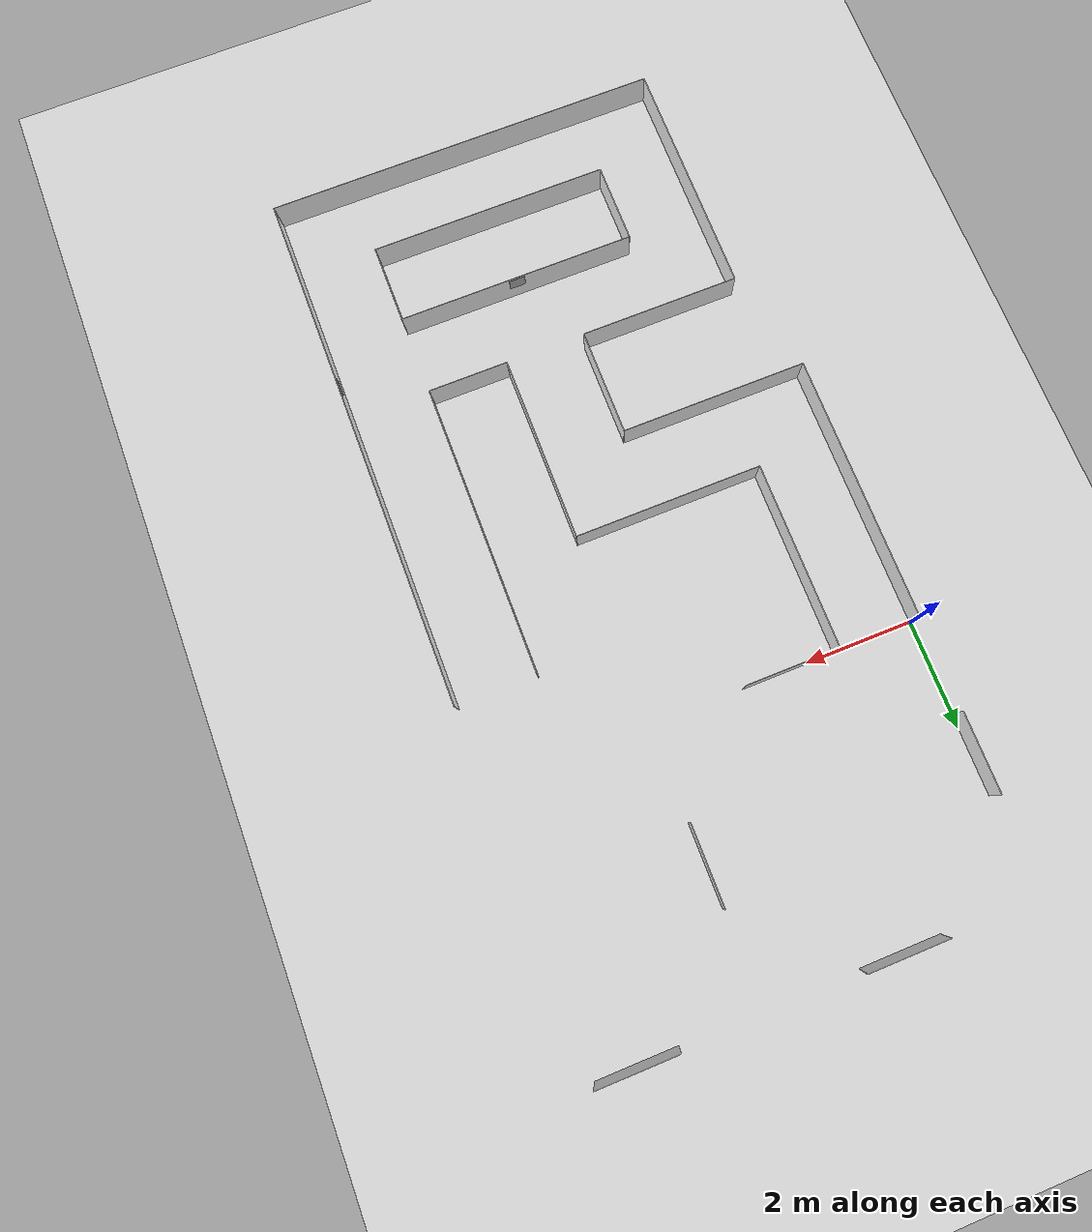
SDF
<sdf version="1.6">
 <world name="circuito_cuadrado">
  <include><uri>model://sun</uri></include>
  <include><uri>model://ground_plane</uri></include>
  <model name="wall_left">
   <static>true</static>
   <link name="link">
    <visual name="visual">
     <geometry><box><size>1.5 0.01 0.7</size></box></geometry>
     <material><ambient>1 1 1 1</ambient></material>
    </visual>
    <collision name="collision"><geometry><box><size>1.5 0.01 0.7</size></box></geometry></collision>
   </link>
   <pose>0 2.5 0.35 0 0 1.5708</pose>
  </model>
  <model name="wall_right">
   <static>true</static>
   <link name="link">
    <visual name="visual">
     <geometry><box><size>1.5 0.01 0.7</size></box></geometry>
     <material><ambient>1 1 1 1</ambient></material>
    </visual>
    <collision name="collision"><geometry><box><size>1.5 0.01 0.7</size></box></geometry></collision>
   </link>
   <pose>5 2.5 0.35 0 0 1.5708</pose>
  </model>
  <model name="wall_top">
   <static>true</static>
   <link name="link">
    <visual name="visual">
     <geometry><box><size>1.5 0.01 0.7</size></box></geometry>
     <material><ambient>1 1 1 1</ambient></material>
    </visual>
    <collision name="collision"><geometry><box><size>1.5 0.01 0.7</size></box></geometry></collision>
   </link>
   <pose>2.5 5 0.35 0 0 0</pose>
  </model>
  <model name="wall_bottom">
   <static>true</static>
   <link name="link">
    <visual name="visual">
     <geometry><box><size>1.5 0.01 0.7</size></box></geometry>
     <material><ambient>1 1 1 1</ambient></material>
    </visual>
    <collision name="collision"><geometry><box><size>1.5 0.01 0.7</size></box></geometry></collision>
   </link>
   <pose>2.5 0 0.35 0 0 0</pose>
  </model>
  <model name="wall_passillo_ini_i">
   <static>true</static>
   <link name="link">
    <visual name="visual">
     <geometry><box><size>3.5 0.01 0.7</size></box></geometry>
     <material><ambient>1 1 1 1</ambient></material>
    </visual>
    <collision name="collision"><geometry><box><size>3.5 0.01 0.7</size></box></geometry></collision>
   </link>
   <pose>1.5 -1.75 0.35 0 0 1.5708</pose>
  </model>
  <model name="wall_passillo_ini_d">
   <static>true</static>
   <link name="link">
    <visual name="visual">
     <geometry><box><size>5 0.01 0.7</size></box></geometry>
     <material><ambient>1 1 1 1</ambient></material>
    </visual>
    <collision name="collision"><geometry><box><size>5 0.01 0.7</size></box></geometry></collision>
   </link>
   <pose>0 -2.5 0.35 0 0 1.5708</pose>
  </model>
  <model name="wall_pasillo_2_i">
   <static>true</static>
   <link name="link">
    <visual name="visual">
     <geometry><box><size>3.5 0.01 0.7</size></box></geometry>
     <material><ambient>1 1 1 1</ambient></material>
    </visual>
    <collision name="collision"><geometry><box><size>3.5 0.01 0.7</size></box></geometry></collision>
   </link>
   <pose>3.25 -3.5 0.35 0 0 0</pose>
  </model>
  <model name="wall_pasillo_2_d">
   <static>true</static>
   <link name="link">
    <visual name="visual">
     <geometry><box><size>3.5 0.01 0.7</size></box></geometry>
     <material><ambient>1 1 1 1</ambient></material>
    </visual>
    <collision name="collision"><geometry><box><size>3.5 0.01 0.7</size></box></geometry></collision>
   </link>
   <pose>1.75 -5 0.35 0 0 0</pose>
  </model>
  <model name="wall_passillo_3_i">
   <static>true</static>
   <link name="link">
    <visual name="visual">
     <geometry><box><size>3.5 0.01 0.7</size></box></geometry>
     <material><ambient>1 1 1 1</ambient></material>
    </visual>
    <collision name="collision"><geometry><box><size>3.5 0.01 0.7</size></box></geometry></collision>
   </link>
   <pose>5 -5.25 0.35 0 0 1.5708</pose>
  </model>
  <model name="wall_passillo_3_d">
   <static>true</static>
   <link name="link">
    <visual name="visual">
     <geometry><box><size>2 0.01 0.7</size></box></geometry>
     <material><ambient>1 1 1 1</ambient></material>
    </visual>
    <collision name="collision"><geometry><box><size>2 0.01 0.7</size></box></geometry></collision>
   </link>
   <pose>3.5 -6 0.35 0 0 1.5708</pose>
  </model>
  <model name="wall_island_i">
   <static>true</static>
   <link name="link">
    <visual name="visual">
     <geometry><box><size>1.5 0.01 0.7</size></box></geometry>
     <material><ambient>1 1 1 1</ambient></material>
    </visual>
    <collision name="collision"><geometry><box><size>1.5 0.01 0.7</size></box></geometry></collision>
   </link>
   <pose>2 -9.25 0.35 0 0 1.5708</pose>
  </model>
  <model name="wall_island_d">
   <static>true</static>
   <link name="link">
    <visual name="visual">
     <geometry><box><size>1.5 0.01 0.7</size></box></geometry>
     <material><ambient>1 1 1 1</ambient></material>
    </visual>
    <collision name="collision"><geometry><box><size>1.5 0.01 0.7</size></box></geometry></collision>
   </link>
   <pose>6.5 -9.25 0.35 0 0 1.5708</pose>
  </model>
  <model name="wall_island_sup">
   <static>true</static>
   <link name="link">
    <visual name="visual">
     <geometry><box><size>4.5 0.01 0.7</size></box></geometry>
     <material><ambient>1 1 1 1</ambient></material>
    </visual>
    <collision name="collision"><geometry><box><size>4.5 0.01 0.7</size></box></geometry></collision>
   </link>
   <pose>4.25 -8.5 0.35 0 0 0</pose>
  </model>
  <model name="wall_island_inf">
   <static>true</static>
   <link name="link">
    <visual name="visual">
     <geometry><box><size>4.5 0.01 0.7</size></box></geometry>
     <material><ambient>1 1 1 1</ambient></material>
    </visual>
    <collision name="collision"><geometry><box><size>4.5 0.01 0.7</size></box></geometry></collision>
   </link>
   <pose>4.25 -10 0.35 0 0 0</pose>
  </model>
  <model name="wall_island_fuera_sup_i">
   <static>true</static>
   <link name="link">
    <visual name="visual">
     <geometry><box><size>1.5 0.01 0.7</size></box></geometry>
     <material><ambient>1 1 1 1</ambient></material>
    </visual>
    <collision name="collision"><geometry><box><size>1.5 0.01 0.7</size></box></geometry></collision>
   </link>
   <pose>5.75 -7 0.35 0 0 0</pose>
  </model>
  <model name="wall_island_fuera_sup_d">
   <static>true</static>
   <link name="link">
    <visual name="visual">
     <geometry><box><size>3 0.01 0.7</size></box></geometry>
     <material><ambient>1 1 1 1</ambient></material>
    </visual>
    <collision name="collision"><geometry><box><size>3 0.01 0.7</size></box></geometry></collision>
   </link>
   <pose>2 -7 0.35 0 0 0</pose>
  </model>
  <model name="wall_island_fuera_i">
   <static>true</static>
   <link name="link">
    <visual name="visual">
     <geometry><box><size>4.5 0.01 0.7</size></box></geometry>
     <material><ambient>1 1 1 1</ambient></material>
    </visual>
    <collision name="collision"><geometry><box><size>4.5 0.01 0.7</size></box></geometry></collision>
   </link>
   <pose>0.5 -9.25 0.35 0 0 1.5708</pose>
  </model>
  <model name="wall_island_fuera_inf">
   <static>true</static>
   <link name="link">
    <visual name="visual">
     <geometry><box><size>7.5 0.01 0.7</size></box></geometry>
     <material><ambient>1 1 1 1</ambient></material>
    </visual>
    <collision name="collision"><geometry><box><size>7.5 0.01 0.7</size></box></geometry></collision>
   </link>
   <pose>4.25 -11.5 0.35 0 0 0</pose>
  </model>
  <model name="wall_pasillo_final_d">
   <static>true</static>
   <link name="link">
    <visual name="visual">
     <geometry><box><size>10 0.01 0.7</size></box></geometry>
     <material><ambient>1 1 1 1</ambient></material>
    </visual>
    <collision name="collision"><geometry><box><size>10 0.01 0.7</size></box></geometry></collision>
   </link>
   <pose>8 -6.5 0.35 0 0 1.5708</pose>
  </model>
  <model name="wall_pasillo_final_i">
   <static>true</static>
   <link name="link">
    <visual name="visual">
     <geometry><box><size>5.5 0.01 0.7</size></box></geometry>
     <material><ambient>1 1 1 1</ambient></material>
    </visual>
    <collision name="collision"><geometry><box><size>5.5 0.01 0.7</size></box></geometry></collision>
   </link>
   <pose>6.5 -4.25 0.35 0 0 1.5708</pose>
  </model>
  <model name="wall_final">
   <static>true</static>
   <link name="link">
    <visual name="visual">
     <geometry><box><size>1.5 0.01 0.7</size></box></geometry>
     <material><ambient>1 1 1 1</ambient></material>
    </visual>
    <collision name="collision"><geometry><box><size>1.5 0.01 0.7</size></box></geometry></collision>
   </link>
   <pose>7.25 5 0.35 0 0 0</pose>
  </model>
  <include>
   <uri>model://5x5_1000-10</uri>
   <name>aruco_10_1</name>
   <pose>4.25 -8.495 0.35 0 0 1.5708</pose>
  </include>
  <include>
   <uri>model://5x5_1000-10</uri>
   <name>aruco_10_2</name>
   <pose>7.995 -7.75 0.35 0 0 3.14159</pose>
  </include>
 </world>
</sdf>

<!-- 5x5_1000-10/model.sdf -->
<sdf version="1.6">
  <model name="5x5_1000-10">
    <static>true</static>
    <link name="link">
      <visual name="visual">
        <geometry>
          <mesh>
            <uri>model://5x5_1000-10/meshes/5x5_1000-10.dae</uri>
          <scale>0.6 0.6 0.6</scale></mesh>
        </geometry>
      </visual>
    </link>
  </model>
</sdf>
